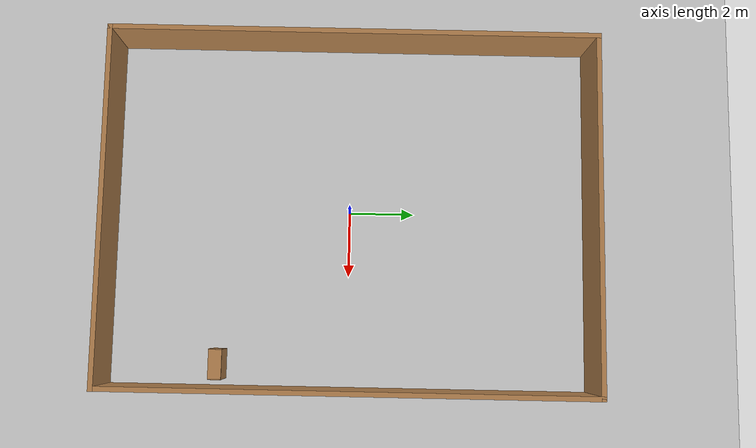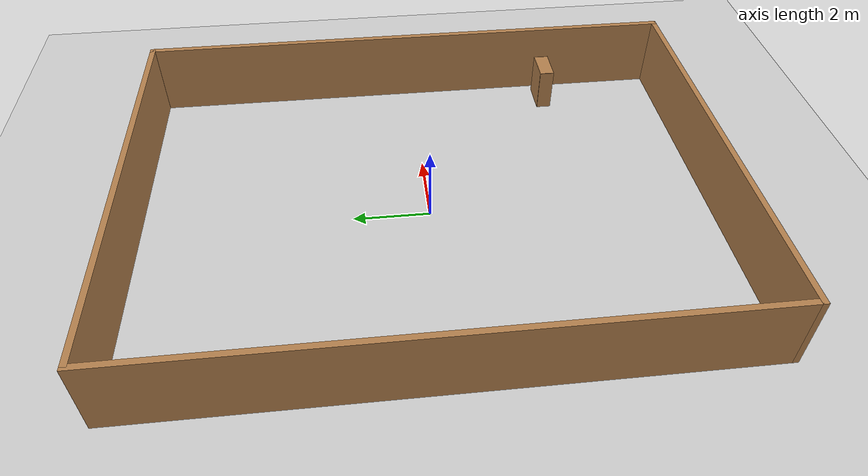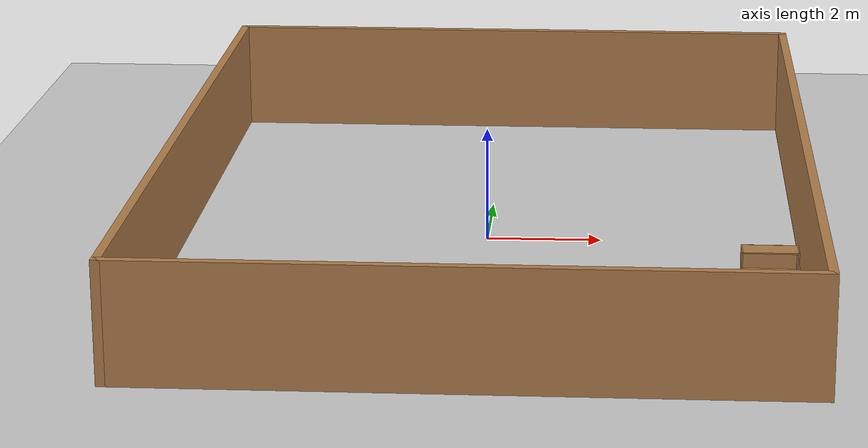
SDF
<sdf version="1.7">
 <world name="default">
  <light name="sun" type="directional">
   <pose>0 0 10 0 -0 0</pose>
   <diffuse>0.8 0.8 0.8 1</diffuse>
   <specular>0.2 0.2 0.2 1</specular>
   <attenuation>
    <range>1000</range>
    <constant>0.9</constant>
    <linear>0.01</linear>
    <quadratic>0.001</quadratic>
   </attenuation>
   <direction>0 0.5 -0.9</direction>
  </light>
  <include><uri>model://ground_plane</uri></include>
  <model name="box_try">
   <link name="Wall_6">
    <pose>0 7.425 0 0 -0 0</pose>
    <inertial>
     <mass>1</mass>
     <inertia><ixx>1</ixx><ixy>0</ixy><ixz>0</ixz><iyy>1</iyy><iyz>0</iyz><izz>1</izz></inertia>
    </inertial>
    <visual name="Wall_6_Visual">
     <pose>0 0 1 0 -0 0</pose>
     <geometry><box><size>11 0.15 2</size></box></geometry>
     <material>
      <script><uri>file://media/materials/scripts/gazebo.material</uri><name>Gazebo/Wood</name></script>
      <ambient>1 1 1 1</ambient>
      <diffuse>1 1 1 1</diffuse>
      <specular>0.2 0.2 0.2 1</specular>
      <emissive>0 0 0 1</emissive>
      <shader type="pixel"><normal_map>__default__</normal_map></shader>
     </material>
     <meta><layer>0</layer></meta>
    </visual>
    <collision name="Wall_6_Collision">
     <pose>0 0 1 0 -0 0</pose>
     <geometry><box><size>11 0.15 2</size></box></geometry>
     <surface>
      <friction>
       <ode><mu>1</mu><mu2>1</mu2><fdir1>0 0 0</fdir1><slip1>0</slip1><slip2>0</slip2></ode>
       <torsional>
        <coefficient>1</coefficient>
        <patch_radius>0</patch_radius>
        <surface_radius>0</surface_radius>
        <use_patch_radius>1</use_patch_radius>
        <ode><slip>0</slip></ode>
       </torsional>
      </friction>
      <bounce><restitution_coefficient>0</restitution_coefficient><threshold>1e+06</threshold></bounce>
      <contact>
       <collide_without_contact>0</collide_without_contact>
       <collide_without_contact_bitmask>1</collide_without_contact_bitmask>
       <collide_bitmask>1</collide_bitmask>
       <ode>
        <soft_cfm>0</soft_cfm>
        <soft_erp>0.2</soft_erp>
        <kp>1e+13</kp>
        <kd>1</kd>
        <max_vel>0.01</max_vel>
        <min_depth>0</min_depth>
       </ode>
       <bullet>
        <split_impulse>1</split_impulse>
        <split_impulse_penetration_threshold>-0.01</split_impulse_penetration_threshold>
        <soft_cfm>0</soft_cfm>
        <soft_erp>0.2</soft_erp>
        <kp>1e+13</kp>
        <kd>1</kd>
       </bullet>
      </contact>
     </surface>
    </collision>
   </link>
   <link name="Wall_7">
    <pose>5.425 0 0 0 0 -1.5708</pose>
    <inertial>
     <mass>1</mass>
     <inertia><ixx>1</ixx><ixy>0</ixy><ixz>0</ixz><iyy>1</iyy><iyz>0</iyz><izz>1</izz></inertia>
    </inertial>
    <visual name="Wall_7_Visual">
     <pose>0 0 1 0 -0 0</pose>
     <geometry><box><size>15 0.15 2</size></box></geometry>
     <material>
      <script><uri>file://media/materials/scripts/gazebo.material</uri><name>Gazebo/Wood</name></script>
      <ambient>1 1 1 1</ambient>
      <diffuse>1 1 1 1</diffuse>
      <specular>0.2 0.2 0.2 1</specular>
      <emissive>0 0 0 1</emissive>
      <shader type="pixel"><normal_map>__default__</normal_map></shader>
     </material>
     <meta><layer>0</layer></meta>
    </visual>
    <collision name="Wall_7_Collision">
     <pose>0 0 1 0 -0 0</pose>
     <geometry><box><size>15 0.15 2</size></box></geometry>
     <surface>
      <friction>
       <ode><mu>1</mu><mu2>1</mu2><fdir1>0 0 0</fdir1><slip1>0</slip1><slip2>0</slip2></ode>
       <torsional>
        <coefficient>1</coefficient>
        <patch_radius>0</patch_radius>
        <surface_radius>0</surface_radius>
        <use_patch_radius>1</use_patch_radius>
        <ode><slip>0</slip></ode>
       </torsional>
      </friction>
      <bounce><restitution_coefficient>0</restitution_coefficient><threshold>1e+06</threshold></bounce>
      <contact>
       <collide_without_contact>0</collide_without_contact>
       <collide_without_contact_bitmask>1</collide_without_contact_bitmask>
       <collide_bitmask>1</collide_bitmask>
       <ode>
        <soft_cfm>0</soft_cfm>
        <soft_erp>0.2</soft_erp>
        <kp>1e+13</kp>
        <kd>1</kd>
        <max_vel>0.01</max_vel>
        <min_depth>0</min_depth>
       </ode>
       <bullet>
        <split_impulse>1</split_impulse>
        <split_impulse_penetration_threshold>-0.01</split_impulse_penetration_threshold>
        <soft_cfm>0</soft_cfm>
        <soft_erp>0.2</soft_erp>
        <kp>1e+13</kp>
        <kd>1</kd>
       </bullet>
      </contact>
     </surface>
    </collision>
   </link>
   <link name="Wall_8">
    <pose>0 -7.425 0 0 -0 3.14159</pose>
    <inertial>
     <mass>1</mass>
     <inertia><ixx>1</ixx><ixy>0</ixy><ixz>0</ixz><iyy>1</iyy><iyz>0</iyz><izz>1</izz></inertia>
    </inertial>
    <visual name="Wall_8_Visual">
     <pose>0 0 1 0 -0 0</pose>
     <geometry><box><size>11 0.15 2</size></box></geometry>
     <material>
      <script><uri>file://media/materials/scripts/gazebo.material</uri><name>Gazebo/Wood</name></script>
      <ambient>1 1 1 1</ambient>
      <diffuse>1 1 1 1</diffuse>
      <specular>0.2 0.2 0.2 1</specular>
      <emissive>0 0 0 1</emissive>
      <shader type="pixel"><normal_map>__default__</normal_map></shader>
     </material>
     <meta><layer>0</layer></meta>
    </visual>
    <collision name="Wall_8_Collision">
     <pose>0 0 1 0 -0 0</pose>
     <geometry><box><size>11 0.15 2</size></box></geometry>
     <surface>
      <friction>
       <ode><mu>1</mu><mu2>1</mu2><fdir1>0 0 0</fdir1><slip1>0</slip1><slip2>0</slip2></ode>
       <torsional>
        <coefficient>1</coefficient>
        <patch_radius>0</patch_radius>
        <surface_radius>0</surface_radius>
        <use_patch_radius>1</use_patch_radius>
        <ode><slip>0</slip></ode>
       </torsional>
      </friction>
      <bounce><restitution_coefficient>0</restitution_coefficient><threshold>1e+06</threshold></bounce>
      <contact>
       <collide_without_contact>0</collide_without_contact>
       <collide_without_contact_bitmask>1</collide_without_contact_bitmask>
       <collide_bitmask>1</collide_bitmask>
       <ode>
        <soft_cfm>0</soft_cfm>
        <soft_erp>0.2</soft_erp>
        <kp>1e+13</kp>
        <kd>1</kd>
        <max_vel>0.01</max_vel>
        <min_depth>0</min_depth>
       </ode>
       <bullet>
        <split_impulse>1</split_impulse>
        <split_impulse_penetration_threshold>-0.01</split_impulse_penetration_threshold>
        <soft_cfm>0</soft_cfm>
        <soft_erp>0.2</soft_erp>
        <kp>1e+13</kp>
        <kd>1</kd>
       </bullet>
      </contact>
     </surface>
    </collision>
   </link>
   <link name="Wall_9">
    <pose>-5.425 0 0 0 -0 1.5708</pose>
    <inertial>
     <mass>1</mass>
     <inertia><ixx>1</ixx><ixy>0</ixy><ixz>0</ixz><iyy>1</iyy><iyz>0</iyz><izz>1</izz></inertia>
    </inertial>
    <visual name="Wall_9_Visual">
     <pose>0 0 1 0 -0 0</pose>
     <geometry><box><size>15 0.15 2</size></box></geometry>
     <material>
      <script><uri>file://media/materials/scripts/gazebo.material</uri><name>Gazebo/Wood</name></script>
      <ambient>1 1 1 1</ambient>
      <diffuse>1 1 1 1</diffuse>
      <specular>0.2 0.2 0.2 1</specular>
      <emissive>0 0 0 1</emissive>
      <shader type="pixel"><normal_map>__default__</normal_map></shader>
     </material>
     <meta><layer>0</layer></meta>
    </visual>
    <collision name="Wall_9_Collision">
     <pose>0 0 1 0 -0 0</pose>
     <geometry><box><size>15 0.15 2</size></box></geometry>
     <surface>
      <friction>
       <ode><mu>1</mu><mu2>1</mu2><fdir1>0 0 0</fdir1><slip1>0</slip1><slip2>0</slip2></ode>
       <torsional>
        <coefficient>1</coefficient>
        <patch_radius>0</patch_radius>
        <surface_radius>0</surface_radius>
        <use_patch_radius>1</use_patch_radius>
        <ode><slip>0</slip></ode>
       </torsional>
      </friction>
      <bounce><restitution_coefficient>0</restitution_coefficient><threshold>1e+06</threshold></bounce>
      <contact>
       <collide_without_contact>0</collide_without_contact>
       <collide_without_contact_bitmask>1</collide_without_contact_bitmask>
       <collide_bitmask>1</collide_bitmask>
       <ode>
        <soft_cfm>0</soft_cfm>
        <soft_erp>0.2</soft_erp>
        <kp>1e+13</kp>
        <kd>1</kd>
        <max_vel>0.01</max_vel>
        <min_depth>0</min_depth>
       </ode>
       <bullet>
        <split_impulse>1</split_impulse>
        <split_impulse_penetration_threshold>-0.01</split_impulse_penetration_threshold>
        <soft_cfm>0</soft_cfm>
        <soft_erp>0.2</soft_erp>
        <kp>1e+13</kp>
        <kd>1</kd>
       </bullet>
      </contact>
     </surface>
    </collision>
   </link>
   <static>1</static>
   <pose>0.065147 0.024848 0 0 -0 0</pose>
  </model>
  <model name="bookshelf">
   <static>1</static>
   <link name="link">
    <inertial><mass>1</mass></inertial>
    <collision name="back">
     <pose>0 0.005 0.6 0 -0 0</pose>
     <geometry><box><size>0.9 0.01 1.2</size></box></geometry>
    </collision>
    <visual name="visual1">
     <pose>0 0.005 0.6 0 -0 0</pose>
     <geometry><box><size>0.9 0.01 1.2</size></box></geometry>
     <material>
      <script><uri>file://media/materials/scripts/gazebo.material</uri><name>Gazebo/Wood</name></script>
     </material>
    </visual>
    <collision name="left_side">
     <pose>0.45 -0.195 0.6 0 -0 0</pose>
     <geometry><box><size>0.02 0.4 1.2</size></box></geometry>
    </collision>
    <visual name="visual2">
     <pose>0.45 -0.195 0.6 0 -0 0</pose>
     <geometry><box><size>0.02 0.4 1.2</size></box></geometry>
     <material>
      <script><uri>file://media/materials/scripts/gazebo.material</uri><name>Gazebo/Wood</name></script>
     </material>
    </visual>
    <collision name="right_side">
     <pose>-0.45 -0.195 0.6 0 -0 0</pose>
     <geometry><box><size>0.02 0.4 1.2</size></box></geometry>
    </collision>
    <visual name="visual3">
     <pose>-0.45 -0.195 0.6 0 -0 0</pose>
     <geometry><box><size>0.02 0.4 1.2</size></box></geometry>
     <material>
      <script><uri>file://media/materials/scripts/gazebo.material</uri><name>Gazebo/Wood</name></script>
     </material>
    </visual>
    <collision name="bottom">
     <pose>0 -0.195 0.03 0 -0 0</pose>
     <geometry><box><size>0.88 0.4 0.06</size></box></geometry>
    </collision>
    <visual name="visual4">
     <pose>0 -0.195 0.03 0 -0 0</pose>
     <geometry><box><size>0.88 0.4 0.06</size></box></geometry>
     <material>
      <script><uri>file://media/materials/scripts/gazebo.material</uri><name>Gazebo/Wood</name></script>
     </material>
    </visual>
    <collision name="top">
     <pose>0 -0.195 1.19 0 -0 0</pose>
     <geometry><box><size>0.88 0.4 0.02</size></box></geometry>
    </collision>
    <visual name="visual5">
     <pose>0 -0.195 1.19 0 -0 0</pose>
     <geometry><box><size>0.88 0.4 0.02</size></box></geometry>
     <material>
      <script><uri>file://media/materials/scripts/gazebo.material</uri><name>Gazebo/Wood</name></script>
     </material>
    </visual>
    <collision name="low_shelf">
     <pose>0 -0.195 0.43 0 -0 0</pose>
     <geometry><box><size>0.88 0.4 0.02</size></box></geometry>
    </collision>
    <visual name="visual6">
     <pose>0 -0.195 0.43 0 -0 0</pose>
     <geometry><box><size>0.88 0.4 0.02</size></box></geometry>
     <material>
      <script><uri>file://media/materials/scripts/gazebo.material</uri><name>Gazebo/Wood</name></script>
     </material>
    </visual>
    <collision name="high_shelf">
     <pose>0 -0.195 0.8 0 -0 0</pose>
     <geometry><box><size>0.88 0.4 0.02</size></box></geometry>
    </collision>
    <visual name="visual7">
     <pose>0 -0.195 0.8 0 -0 0</pose>
     <geometry><box><size>0.88 0.4 0.02</size></box></geometry>
     <material>
      <script><uri>file://media/materials/scripts/gazebo.material</uri><name>Gazebo/Wood</name></script>
     </material>
    </visual>
   </link>
   <pose>4.75 -3.75 0 0 -0 0</pose>
  </model>
 </world>
</sdf>
